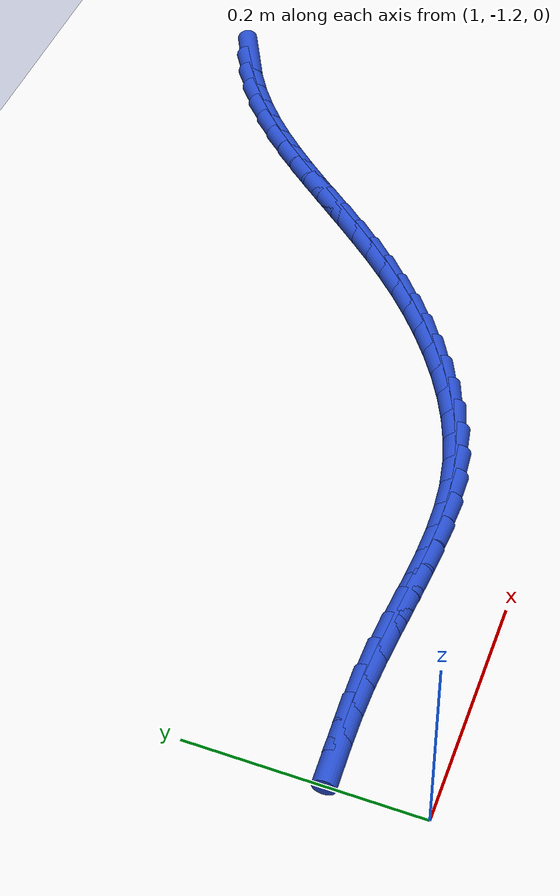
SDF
<sdf version="1.6">
 <world name="default">
  <model name="ground_plane">
   <static>1</static>
   <link name="link">
    <collision name="collision">
     <geometry><plane><normal>0 0 1</normal><size>100 100</size></plane></geometry>
     <surface><friction><ode><mu>100</mu><mu2>50</mu2></ode></friction></surface>
    </collision>
    <visual name="visual">
     <cast_shadows>0</cast_shadows>
     <geometry><plane><normal>0 0 1</normal><size>100 100</size></plane></geometry>
     <material>
      <script><uri>file://media/materials/scripts/gazebo.material</uri><name>Gazebo/WhiteGlow</name></script>
     </material>
    </visual>
   </link>
  </model>
  <model name="line">
   <link name="link_170">
    <pose>1.7706357171118354 -0.7526010904004458 0.01 0 1.57 0.46975085641986913</pose>
    <collision name="collision">
     <geometry><cylinder><radius>0.01</radius><length>0.08</length></cylinder></geometry>
    </collision>
    <visual name="visual">
     <material>
      <script><name>Gazebo/Blue</name><uri>file://media/materials/scripts/gazebo.material</uri></script>
     </material>
     <geometry><cylinder><radius>0.01</radius><length>0.08</length></cylinder></geometry>
    </visual>
   </link>
   <link name="link_171">
    <pose>1.7469241691026547 -0.7646383171889117 0.01 0 1.57 0.556308863797804</pose>
    <collision name="collision">
     <geometry><cylinder><radius>0.01</radius><length>0.08</length></cylinder></geometry>
    </collision>
    <visual name="visual">
     <material>
      <script><name>Gazebo/Blue</name><uri>file://media/materials/scripts/gazebo.material</uri></script>
     </material>
     <geometry><cylinder><radius>0.01</radius><length>0.08</length></cylinder></geometry>
    </visual>
   </link>
   <link name="link_172">
    <pose>1.724723952151202 -0.7784428425161253 0.01 0 1.57 0.6343816912252768</pose>
    <collision name="collision">
     <geometry><cylinder><radius>0.01</radius><length>0.08</length></cylinder></geometry>
    </collision>
    <visual name="visual">
     <material>
      <script><name>Gazebo/Blue</name><uri>file://media/materials/scripts/gazebo.material</uri></script>
     </material>
     <geometry><cylinder><radius>0.01</radius><length>0.08</length></cylinder></geometry>
    </visual>
   </link>
   <link name="link_173">
    <pose>1.7038369523192438 -0.7938124852795636 0.01 0 1.57 0.7023309864205848</pose>
    <collision name="collision">
     <geometry><cylinder><radius>0.01</radius><length>0.08</length></cylinder></geometry>
    </collision>
    <visual name="visual">
     <material>
      <script><name>Gazebo/Blue</name><uri>file://media/materials/scripts/gazebo.material</uri></script>
     </material>
     <geometry><cylinder><radius>0.01</radius><length>0.08</length></cylinder></geometry>
    </visual>
   </link>
   <link name="link_174">
    <pose>1.6840650556685433 -0.8105450643767054 0.01 0 1.57 0.7592376271240546</pose>
    <collision name="collision">
     <geometry><cylinder><radius>0.01</radius><length>0.08</length></cylinder></geometry>
    </collision>
    <visual name="visual">
     <material>
      <script><name>Gazebo/Blue</name><uri>file://media/materials/scripts/gazebo.material</uri></script>
     </material>
     <geometry><cylinder><radius>0.01</radius><length>0.08</length></cylinder></geometry>
    </visual>
   </link>
   <link name="link_175">
    <pose>1.665210148260866 -0.828438398705027 0.01 0 1.57 0.8047500650368791</pose>
    <collision name="collision">
     <geometry><cylinder><radius>0.01</radius><length>0.08</length></cylinder></geometry>
    </collision>
    <visual name="visual">
     <material>
      <script><name>Gazebo/Blue</name><uri>file://media/materials/scripts/gazebo.material</uri></script>
     </material>
     <geometry><cylinder><radius>0.01</radius><length>0.08</length></cylinder></geometry>
    </visual>
   </link>
   <link name="link_176">
    <pose>1.6470741161579767 -0.8472903071620075 0.01 0 1.57 0.838889254691517</pose>
    <collision name="collision">
     <geometry><cylinder><radius>0.01</radius><length>0.08</length></cylinder></geometry>
    </collision>
    <visual name="visual">
     <material>
      <script><name>Gazebo/Blue</name><uri>file://media/materials/scripts/gazebo.material</uri></script>
     </material>
     <geometry><cylinder><radius>0.01</radius><length>0.08</length></cylinder></geometry>
    </visual>
   </link>
   <link name="link_177">
    <pose>1.6294588454216392 -0.8668986086451234 0.01 0 1.57 0.861870811268221</pose>
    <collision name="collision">
     <geometry><cylinder><radius>0.01</radius><length>0.08</length></cylinder></geometry>
    </collision>
    <visual name="visual">
     <material>
      <script><name>Gazebo/Blue</name><uri>file://media/materials/scripts/gazebo.material</uri></script>
     </material>
     <geometry><cylinder><radius>0.01</radius><length>0.08</length></cylinder></geometry>
    </visual>
   </link>
   <link name="link_178">
    <pose>1.6121662221136193 -0.887061122051854 0.01 0 1.57 0.8739720796798386</pose>
    <collision name="collision">
     <geometry><cylinder><radius>0.01</radius><length>0.08</length></cylinder></geometry>
    </collision>
    <visual name="visual">
     <material>
      <script><name>Gazebo/Blue</name><uri>file://media/materials/scripts/gazebo.material</uri></script>
     </material>
     <geometry><cylinder><radius>0.01</radius><length>0.08</length></cylinder></geometry>
    </visual>
   </link>
   <link name="link_179">
    <pose>1.594998132295682 -0.9075756662796753 0.01 0 1.57 0.8754488447542395</pose>
    <collision name="collision">
     <geometry><cylinder><radius>0.01</radius><length>0.08</length></cylinder></geometry>
    </collision>
    <visual name="visual">
     <material>
      <script><name>Gazebo/Blue</name><uri>file://media/materials/scripts/gazebo.material</uri></script>
     </material>
     <geometry><cylinder><radius>0.01</radius><length>0.08</length></cylinder></geometry>
    </visual>
   </link>
   <link name="link_180">
    <pose>1.5777564620295905 -0.9282400602260666 0.01 0 1.57 0.8664963141476334</pose>
    <collision name="collision">
     <geometry><cylinder><radius>0.01</radius><length>0.08</length></cylinder></geometry>
    </collision>
    <visual name="visual">
     <material>
      <script><name>Gazebo/Blue</name><uri>file://media/materials/scripts/gazebo.material</uri></script>
     </material>
     <geometry><cylinder><radius>0.01</radius><length>0.08</length></cylinder></geometry>
    </visual>
   </link>
   <link name="link_181">
    <pose>1.5602430973771124 -0.9488521227885047 0.01 0 1.57 0.8472475114606702</pose>
    <collision name="collision">
     <geometry><cylinder><radius>0.01</radius><length>0.08</length></cylinder></geometry>
    </collision>
    <visual name="visual">
     <material>
      <script><name>Gazebo/Blue</name><uri>file://media/materials/scripts/gazebo.material</uri></script>
     </material>
     <geometry><cylinder><radius>0.01</radius><length>0.08</length></cylinder></geometry>
    </visual>
   </link>
   <link name="link_182">
    <pose>1.5422599244000093 -0.9692096728644672 0.01 0 1.57 0.8178044016172484</pose>
    <collision name="collision">
     <geometry><cylinder><radius>0.01</radius><length>0.08</length></cylinder></geometry>
    </collision>
    <visual name="visual">
     <material>
      <script><name>Gazebo/Blue</name><uri>file://media/materials/scripts/gazebo.material</uri></script>
     </material>
     <geometry><cylinder><radius>0.01</radius><length>0.08</length></cylinder></geometry>
    </visual>
   </link>
   <link name="link_183">
    <pose>1.5236088291600476 -0.9891105293514333 0.01 0 1.57 0.7792232134917304</pose>
    <collision name="collision">
     <geometry><cylinder><radius>0.01</radius><length>0.08</length></cylinder></geometry>
    </collision>
    <visual name="visual">
     <material>
      <script><name>Gazebo/Blue</name><uri>file://media/materials/scripts/gazebo.material</uri></script>
     </material>
     <geometry><cylinder><radius>0.01</radius><length>0.08</length></cylinder></geometry>
    </visual>
   </link>
   <link name="link_184">
    <pose>1.5041250106402009 -1.0083551983612615 0.01 0 1.57 0.7360173722606446</pose>
    <collision name="collision">
     <geometry><cylinder><radius>0.01</radius><length>0.08</length></cylinder></geometry>
    </collision>
    <visual name="visual">
     <material>
      <script><name>Gazebo/Blue</name><uri>file://media/materials/scripts/gazebo.material</uri></script>
     </material>
     <geometry><cylinder><radius>0.01</radius><length>0.08</length></cylinder></geometry>
    </visual>
   </link>
   <link name="link_185">
    <pose>1.4838091823207071 -1.026757537369832 0.01 0 1.57 0.6890650017731335</pose>
    <collision name="collision">
     <geometry><cylinder><radius>0.01</radius><length>0.08</length></cylinder></geometry>
    </collision>
    <visual name="visual">
     <material>
      <script><name>Gazebo/Blue</name><uri>file://media/materials/scripts/gazebo.material</uri></script>
     </material>
     <geometry><cylinder><radius>0.01</radius><length>0.08</length></cylinder></geometry>
    </visual>
   </link>
   <link name="link_186">
    <pose>1.4627133644679722 -1.0441355425574261 0.01 0 1.57 0.6377236985982198</pose>
    <collision name="collision">
     <geometry><cylinder><radius>0.01</radius><length>0.08</length></cylinder></geometry>
    </collision>
    <visual name="visual">
     <material>
      <script><name>Gazebo/Blue</name><uri>file://media/materials/scripts/gazebo.material</uri></script>
     </material>
     <geometry><cylinder><radius>0.01</radius><length>0.08</length></cylinder></geometry>
    </visual>
   </link>
   <link name="link_187">
    <pose>1.4408895929467505 -1.0603072113625815 0.01 0 1.57 0.5813125040326022</pose>
    <collision name="collision">
     <geometry><cylinder><radius>0.01</radius><length>0.08</length></cylinder></geometry>
    </collision>
    <visual name="visual">
     <material>
      <script><name>Gazebo/Blue</name><uri>file://media/materials/scripts/gazebo.material</uri></script>
     </material>
     <geometry><cylinder><radius>0.01</radius><length>0.08</length></cylinder></geometry>
    </visual>
   </link>
   <link name="link_188">
    <pose>1.4183899036217995 -1.0750905412238336 0.01 0 1.57 0.5191304351654353</pose>
    <collision name="collision">
     <geometry><cylinder><radius>0.01</radius><length>0.08</length></cylinder></geometry>
    </collision>
    <visual name="visual">
     <material>
      <script><name>Gazebo/Blue</name><uri>file://media/materials/scripts/gazebo.material</uri></script>
     </material>
     <geometry><cylinder><radius>0.01</radius><length>0.08</length></cylinder></geometry>
    </visual>
   </link>
   <link name="link_189">
    <pose>1.395266332357873 -1.0883035295797194 0.01 0 1.57 0.45049442865402584</pose>
    <collision name="collision">
     <geometry><cylinder><radius>0.01</radius><length>0.08</length></cylinder></geometry>
    </collision>
    <visual name="visual">
     <material>
      <script><name>Gazebo/Blue</name><uri>file://media/materials/scripts/gazebo.material</uri></script>
     </material>
     <geometry><cylinder><radius>0.01</radius><length>0.08</length></cylinder></geometry>
    </visual>
   </link>
   <link name="link_190">
    <pose>1.3715709150197282 -1.099764173868775 0.01 0 1.57 0.3748047760468918</pose>
    <collision name="collision">
     <geometry><cylinder><radius>0.01</radius><length>0.08</length></cylinder></geometry>
    </collision>
    <visual name="visual">
     <material>
      <script><name>Gazebo/Blue</name><uri>file://media/materials/scripts/gazebo.material</uri></script>
     </material>
     <geometry><cylinder><radius>0.01</radius><length>0.08</length></cylinder></geometry>
    </visual>
   </link>
   <link name="link_191">
    <pose>1.34735568747212 -1.1092904715295369 0.01 0 1.57 0.2916444071217324</pose>
    <collision name="collision">
     <geometry><cylinder><radius>0.01</radius><length>0.08</length></cylinder></geometry>
    </collision>
    <visual name="visual">
     <material>
      <script><name>Gazebo/Blue</name><uri>file://media/materials/scripts/gazebo.material</uri></script>
     </material>
     <geometry><cylinder><radius>0.01</radius><length>0.08</length></cylinder></geometry>
    </visual>
   </link>
   <link name="link_192">
    <pose>1.3226726855798048 -1.1167004200005413 0.01 0 1.57 0.20103462913169795</pose>
    <collision name="collision">
     <geometry><cylinder><radius>0.01</radius><length>0.08</length></cylinder></geometry>
    </collision>
    <visual name="visual">
     <material>
      <script><name>Gazebo/Blue</name><uri>file://media/materials/scripts/gazebo.material</uri></script>
     </material>
     <geometry><cylinder><radius>0.01</radius><length>0.08</length></cylinder></geometry>
    </visual>
   </link>
   <link name="link_193">
    <pose>1.2975738972944095 -1.121815236941341 0.01 0 1.57 0.11179513619838202</pose>
    <collision name="collision">
     <geometry><cylinder><radius>0.01</radius><length>0.08</length></cylinder></geometry>
    </collision>
    <visual name="visual">
     <material>
      <script><name>Gazebo/Blue</name><uri>file://media/materials/scripts/gazebo.material</uri></script>
     </material>
     <geometry><cylinder><radius>0.01</radius><length>0.08</length></cylinder></geometry>
    </visual>
   </link>
   <link name="link_194">
    <pose>1.2721080673836356 -1.1246741130232287 0.01 0 1.57 0.038564456244281745</pose>
    <collision name="collision">
     <geometry><cylinder><radius>0.01</radius><length>0.08</length></cylinder></geometry>
    </collision>
    <visual name="visual">
     <material>
      <script><name>Gazebo/Blue</name><uri>file://media/materials/scripts/gazebo.material</uri></script>
     </material>
     <geometry><cylinder><radius>0.01</radius><length>0.08</length></cylinder></geometry>
    </visual>
   </link>
   <link name="link_195">
    <pose>1.2463186895661675 -1.125669159688086 0.01 0 1.57 -0.01704793270966173</pose>
    <collision name="collision">
     <geometry><cylinder><radius>0.01</radius><length>0.08</length></cylinder></geometry>
    </collision>
    <visual name="visual">
     <material>
      <script><name>Gazebo/Blue</name><uri>file://media/materials/scripts/gazebo.material</uri></script>
     </material>
     <geometry><cylinder><radius>0.01</radius><length>0.08</length></cylinder></geometry>
    </visual>
   </link>
   <link name="link_196">
    <pose>1.2202487786086667 -1.1252246785393514 0.01 0 1.57 -0.05542966877687414</pose>
    <collision name="collision">
     <geometry><cylinder><radius>0.01</radius><length>0.08</length></cylinder></geometry>
    </collision>
    <visual name="visual">
     <material>
      <script><name>Gazebo/Blue</name><uri>file://media/materials/scripts/gazebo.material</uri></script>
     </material>
     <geometry><cylinder><radius>0.01</radius><length>0.08</length></cylinder></geometry>
    </visual>
   </link>
   <link name="link_197">
    <pose>1.1939413492777964 -1.123764971180462 0.01 0 1.57 -0.07722282472406214</pose>
    <collision name="collision">
     <geometry><cylinder><radius>0.01</radius><length>0.08</length></cylinder></geometry>
    </collision>
    <visual name="visual">
     <material>
      <script><name>Gazebo/Blue</name><uri>file://media/materials/scripts/gazebo.material</uri></script>
     </material>
     <geometry><cylinder><radius>0.01</radius><length>0.08</length></cylinder></geometry>
    </visual>
   </link>
   <link name="link_198">
    <pose>1.167439416340218 -1.1217143392148567 0.01 0 1.57 -0.08299727612530994</pose>
    <collision name="collision">
     <geometry><cylinder><radius>0.01</radius><length>0.08</length></cylinder></geometry>
    </collision>
    <visual name="visual">
     <material>
      <script><name>Gazebo/Blue</name><uri>file://media/materials/scripts/gazebo.material</uri></script>
     </material>
     <geometry><cylinder><radius>0.01</radius><length>0.08</length></cylinder></geometry>
    </visual>
   </link>
   <link name="link_199">
    <pose>1.1407859945625949 -1.1194970842459728 0.01 0 1.57 -0.07309218593136806</pose>
    <collision name="collision">
     <geometry><cylinder><radius>0.01</radius><length>0.08</length></cylinder></geometry>
    </collision>
    <visual name="visual">
     <material>
      <script><name>Gazebo/Blue</name><uri>file://media/materials/scripts/gazebo.material</uri></script>
     </material>
     <geometry><cylinder><radius>0.01</radius><length>0.08</length></cylinder></geometry>
    </visual>
   </link>
   <link name="link_200">
    <pose>1.114024098711588 -1.117537507877248 0.01 0 1.57 -0.047586936274547666</pose>
    <collision name="collision">
     <geometry><cylinder><radius>0.01</radius><length>0.08</length></cylinder></geometry>
    </collision>
    <visual name="visual">
     <material>
      <script><name>Gazebo/Blue</name><uri>file://media/materials/scripts/gazebo.material</uri></script>
     </material>
     <geometry><cylinder><radius>0.01</radius><length>0.08</length></cylinder></geometry>
    </visual>
   </link>
   <link name="link_201">
    <pose>1.0871967435538608 -1.1162599117121206 0.01 0 1.57 -0.00776018434183531</pose>
    <collision name="collision">
     <geometry><cylinder><radius>0.01</radius><length>0.08</length></cylinder></geometry>
    </collision>
    <visual name="visual">
     <material>
      <script><name>Gazebo/Blue</name><uri>file://media/materials/scripts/gazebo.material</uri></script>
     </material>
     <geometry><cylinder><radius>0.01</radius><length>0.08</length></cylinder></geometry>
    </visual>
   </link>
   <link name="link_202">
    <pose>1.0603477165331148 -1.1160515541305607 0.01 0 1.57 0.028664571449852898</pose>
    <collision name="collision">
     <geometry><cylinder><radius>0.01</radius><length>0.08</length></cylinder></geometry>
    </collision>
    <visual name="visual">
     <material>
      <script><name>Gazebo/Blue</name><uri>file://media/materials/scripts/gazebo.material</uri></script>
     </material>
     <geometry><cylinder><radius>0.01</radius><length>0.08</length></cylinder></geometry>
    </visual>
   </link>
   <link name="link_203">
    <pose>1.0335308013246793 -1.116820460116651 0.01 0 1.57 0.0493628656324084</pose>
    <collision name="collision">
     <geometry><cylinder><radius>0.01</radius><length>0.08</length></cylinder></geometry>
    </collision>
    <visual name="visual">
     <material>
      <script><name>Gazebo/Blue</name><uri>file://media/materials/scripts/gazebo.material</uri></script>
     </material>
     <geometry><cylinder><radius>0.01</radius><length>0.08</length></cylinder></geometry>
    </visual>
   </link>
  </model>
 </world>
</sdf>
